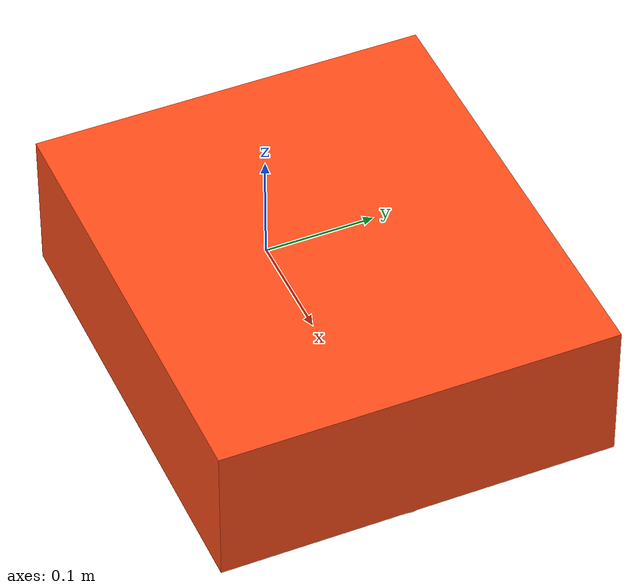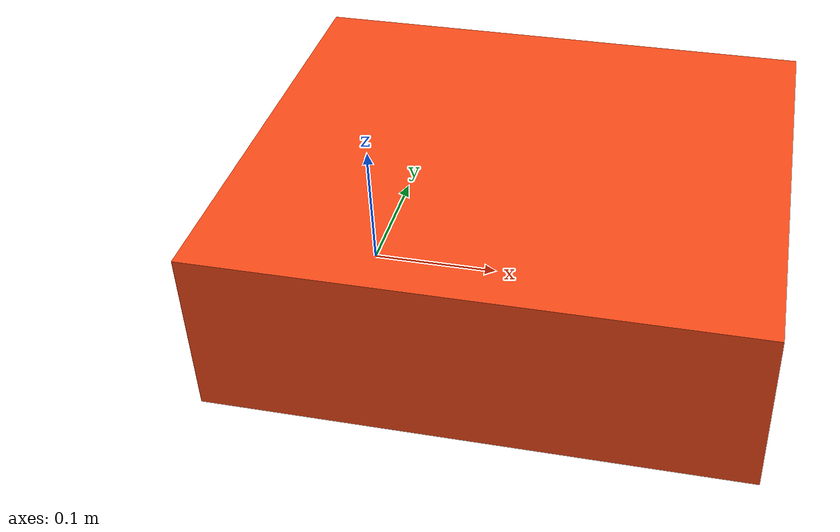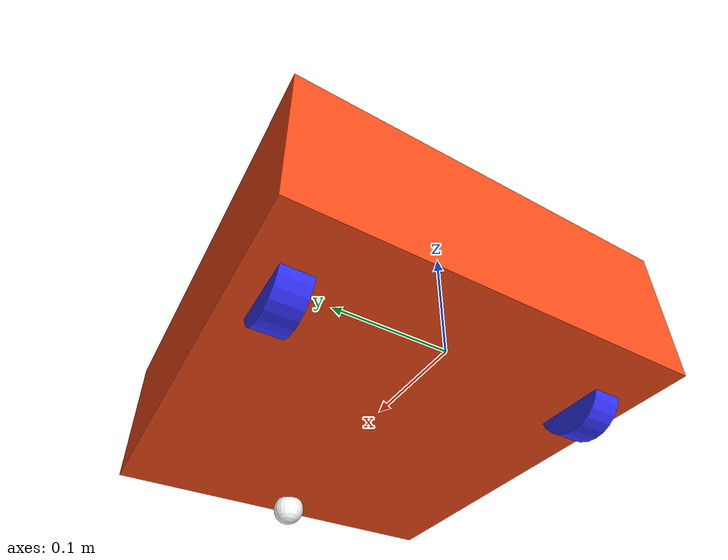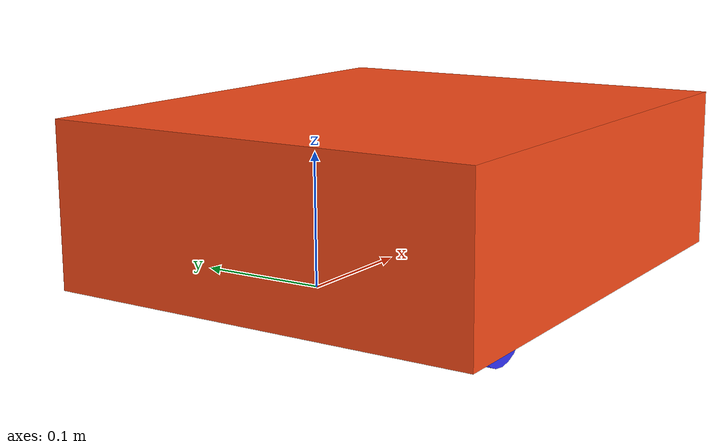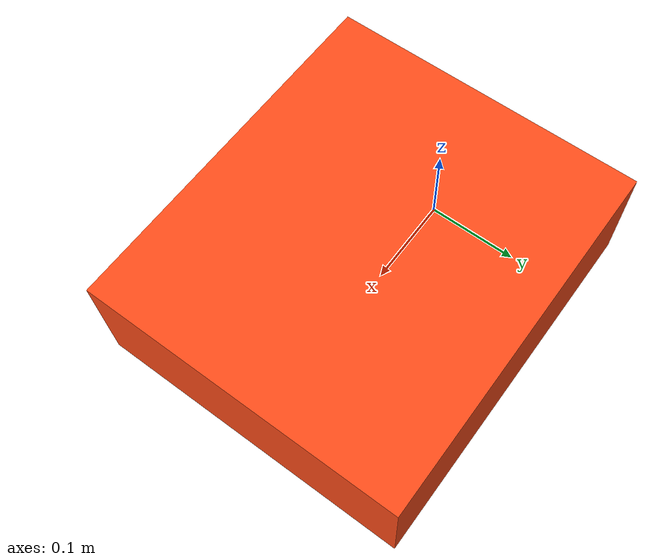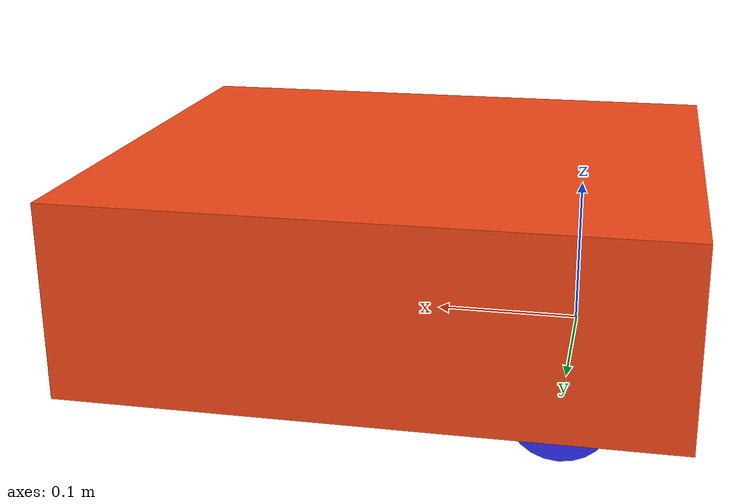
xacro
<?xml version="1.0"?>
<robot xmlns:xacro="http://www.ros.org/wiki/xacro" >

    <xacro:include filename="inertial_macros.xacro"/>

    <xacro:property name="chassis_length" value="0.400"/>
    <xacro:property name="chassis_width" value="0.350"/>
    <xacro:property name="chassis_height" value="0.13"/>
    <xacro:property name="chassis_mass" value="2.5"/>
    <xacro:property name="wheel_radius" value="0.033"/>
    <xacro:property name="wheel_thickness" value="0.026"/>
    <xacro:property name="wheel_mass" value="0.05"/>
    <xacro:property name="wheel_offset_x" value="0.08"/>
    <xacro:property name="wheel_offset_y" value="0.140"/>
    <xacro:property name="wheel_offset_z" value="0.01"/>
    <xacro:property name="caster_wheel_radius" value="0.016"/>
    <xacro:property name="caster_wheel_mass" value="0.1"/>
    <xacro:property name="caster_wheel_offset_x" value="0.3725"/>
    <xacro:property name="caster_wheel_offset_z" value="${wheel_offset_z - wheel_radius + caster_wheel_radius - 0.002}"/>

    <material name="white">
        <color rgba="1 1 1 1" />
    </material>

    <material name="orange">
        <color rgba="1 0.3 0.1 1"/>
    </material>

    <material name="blue">
        <color rgba="0.2 0.2 1 1"/>
    </material>

    <material name="black">
        <color rgba="0 0 0 1"/>
    </material>

    <material name="red">
        <color rgba="1 0 0 1"/>
    </material>

    <!-- BASE LINK -->

    <link name="base_link">

    </link>

    <!-- BASE_FOOTPRINT LINK -->

    <joint name="base_footprint_joint" type="fixed">
        <parent link="base_link"/>
        <child link="base_footprint"/>
        <origin xyz="0 0 0" rpy="0 0 0"/>
    </joint>

    <link name="base_footprint">
    </link>

    <!-- CHASSIS LINK -->

    <joint name="chassis_joint" type="fixed">
        <parent link="base_link"/>
        <child link="chassis"/>
        <origin xyz="${-wheel_offset_x} 0 ${-wheel_offset_z}"/>
    </joint>

    <link name="chassis">
        <visual>
            <origin xyz="${chassis_length/2} 0 ${chassis_height/2}"/>
            <geometry>
                <box size="${chassis_length} ${chassis_width} ${chassis_height}"/>
            </geometry>
            <material name="orange"/>
        </visual>
        <collision>
            <origin xyz="${chassis_length/2} 0 ${chassis_height/2}"/>
            <geometry>
                <box size="${chassis_length} ${chassis_width} ${chassis_height}"/>
            </geometry>
        </collision>
        <xacro:inertial_box mass="0.5" x="${chassis_length}" y="${chassis_width}" z="${chassis_height}">
            <origin xyz="${chassis_length/2} 0 ${chassis_height/2}" rpy="0 0 0"/>
        </xacro:inertial_box>
    </link>

    <gazebo reference="chassis">
        <material>Gazebo/Orange</material>
    </gazebo>

    <!-- LEFT WHEEL LINK -->

    <joint name="left_wheel_joint" type="continuous">
        <parent link="base_link"/>
        <child link="left_wheel"/>
        <origin xyz="0 ${wheel_offset_y} 0" rpy="-${pi/2} 0 0" />
        <axis xyz="0 0 1"/>
    </joint>

    <link name="left_wheel">
        <visual>
            <geometry>
                <cylinder radius="${wheel_radius}" length="${wheel_thickness}"/>
            </geometry>
            <material name="blue"/>
        </visual>
        <collision>
            <geometry>
                <sphere radius="${wheel_radius}"/>
            </geometry>
        </collision>
        <xacro:inertial_cylinder mass="${wheel_mass}" length="${wheel_thickness}" radius="${wheel_radius}">
            <origin xyz="0 0 0" rpy="0 0 0"/>
        </xacro:inertial_cylinder>
    </link>

    <gazebo reference="left_wheel">
        <material>Gazebo/Blue</material>
    </gazebo>

    <!-- RIGHT WHEEL LINK -->

    <joint name="right_wheel_joint" type="continuous">
        <parent link="base_link"/>
        <child link="right_wheel"/>
        <origin xyz="0 ${-wheel_offset_y} 0" rpy="${pi/2} 0 0" />
        <axis xyz="0 0 -1"/>
    </joint>

    <link name="right_wheel">
        <visual>
            <geometry>
                <cylinder radius="${wheel_radius}" length="${wheel_thickness}"/>
            </geometry>
            <material name="blue"/>
        </visual>
        <collision>
            <geometry>
                <sphere radius="${wheel_radius}"/>
            </geometry>
        </collision>
        <xacro:inertial_cylinder mass="${wheel_mass}" length="${wheel_thickness}" radius="${wheel_radius}">
            <origin xyz="0 0 0" rpy="0 0 0"/>
        </xacro:inertial_cylinder>
    </link>

    <gazebo reference="right_wheel">
        <material>Gazebo/Blue</material>
    </gazebo>

    <!-- CASTER WHEEL LINK -->

    <joint name="caster_wheel_joint" type="fixed">
        <parent link="chassis"/>
        <child link="caster_wheel"/>
        <origin xyz="${caster_wheel_offset_x} 0 ${caster_wheel_offset_z}"/>
    </joint>

    <link name="caster_wheel">
        <visual>
            <geometry>
                <sphere radius="${caster_wheel_radius}"/>
            </geometry>
            <material name="white"/>
        </visual>
        <collision>
            <geometry>
                <sphere radius="${caster_wheel_radius}"/>
            </geometry>
        </collision>
        <xacro:inertial_sphere mass="${caster_wheel_mass}" radius="${caster_wheel_radius}">
            <origin xyz="0 0 0" rpy="0 0 0"/>
        </xacro:inertial_sphere>
    </link>

    <gazebo reference="caster_wheel">
        <material>Gazebo/White</material>
        <mu1 value="0.001"/>
        <mu2 value="0.001"/>
    </gazebo>

        <!-- BUMBER SENSOR -->

    <gazebo>
    <plugin name="bumper_plugin" filename="libgazebo_ros_bumper.so">
        <ros>
        <namespace>/</namespace>
        <remapping>bumper_states:=/bumper</remapping>
        </ros>
        <frame_name>base_link</frame_name>
    </plugin>
    </gazebo>

    <!-- IMU Sensor -->
    <link name="imu_link">
    <inertial>
        <mass value="0.1"/>
        <inertia ixx="0.001" ixy="0.0" ixz="0.0"
                iyy="0.001" iyz="0.0"
                izz="0.001"/>
    </inertial>
    </link>

    <joint name="imu_joint" type="fixed">
    <parent link="base_link"/>
    <child link="imu_link"/>
    <origin xyz="0.1 0 0.1" rpy="0 0 0"/>
    </joint>

    <gazebo reference="imu_link">
    <sensor name="imu_sensor" type="imu">
        <always_on>true</always_on>
        <update_rate>100</update_rate>
        <topic>imu/data_raw</topic>
        <plugin filename="libgazebo_ros_imu_sensor.so" name="imu_plugin">
        <ros>
            <namespace>/</namespace>
            <remapping>~/out:=imu/data_raw</remapping>
        </ros>
        <initial_orientation_as_reference>true</initial_orientation_as_reference>
        </plugin>
    </sensor>
    </gazebo>

</robot>
